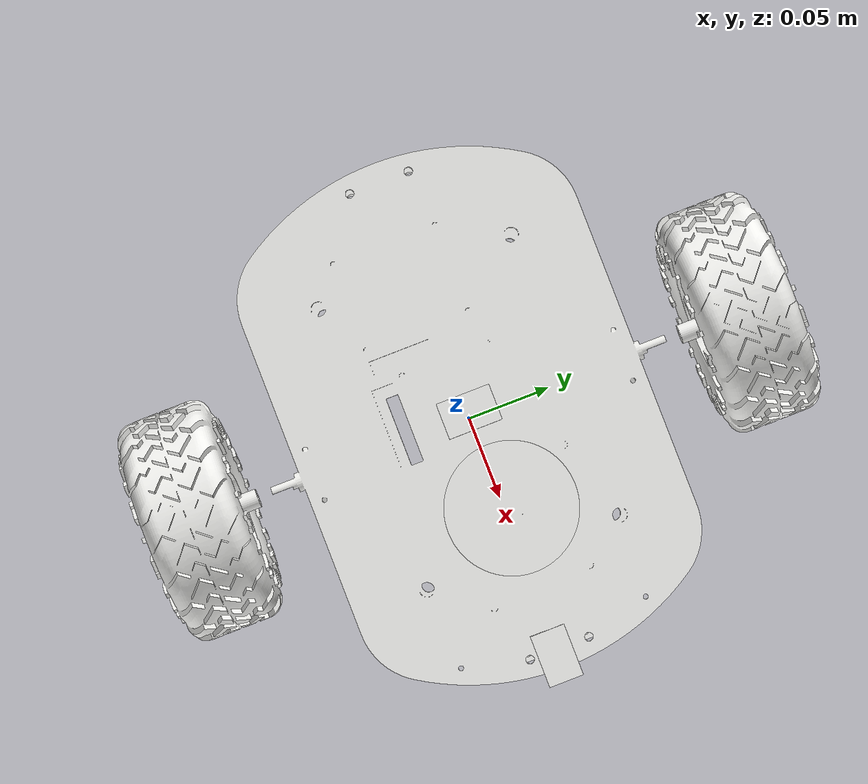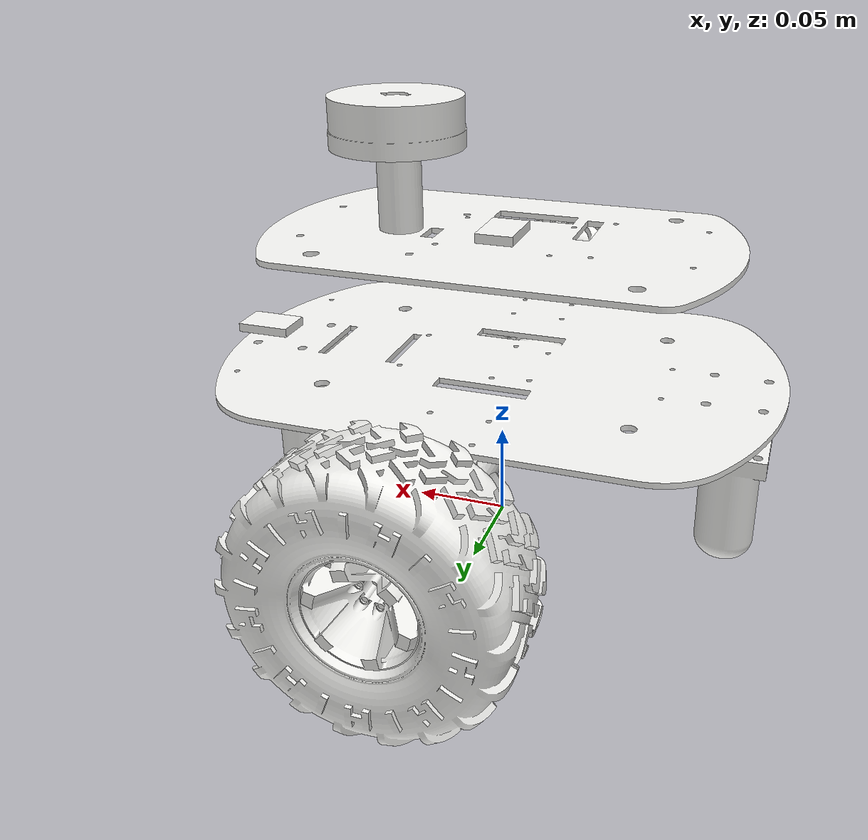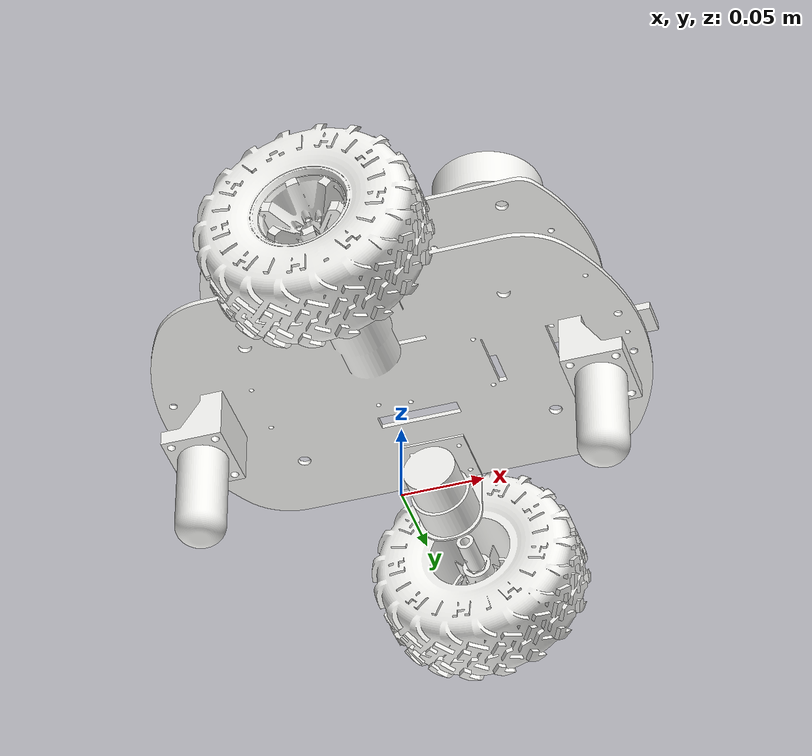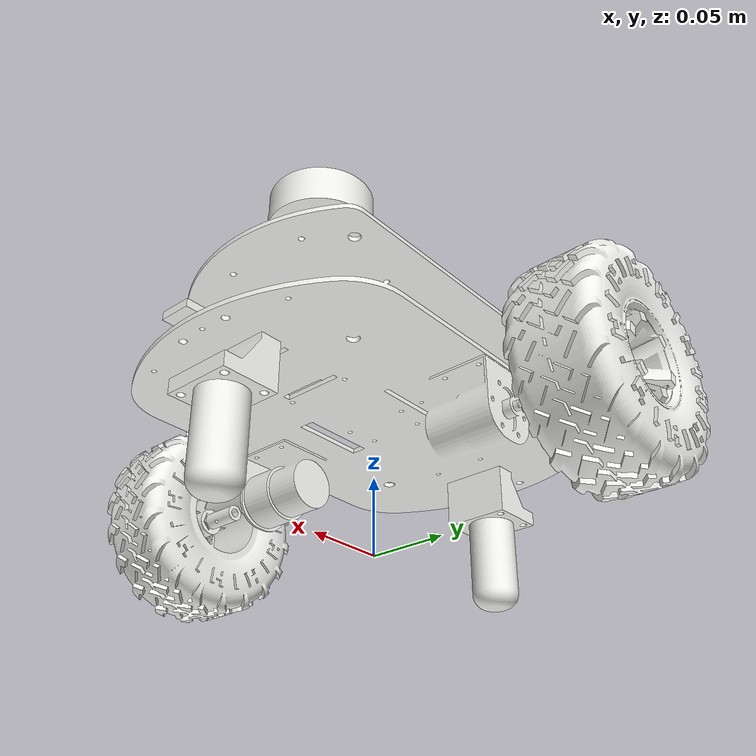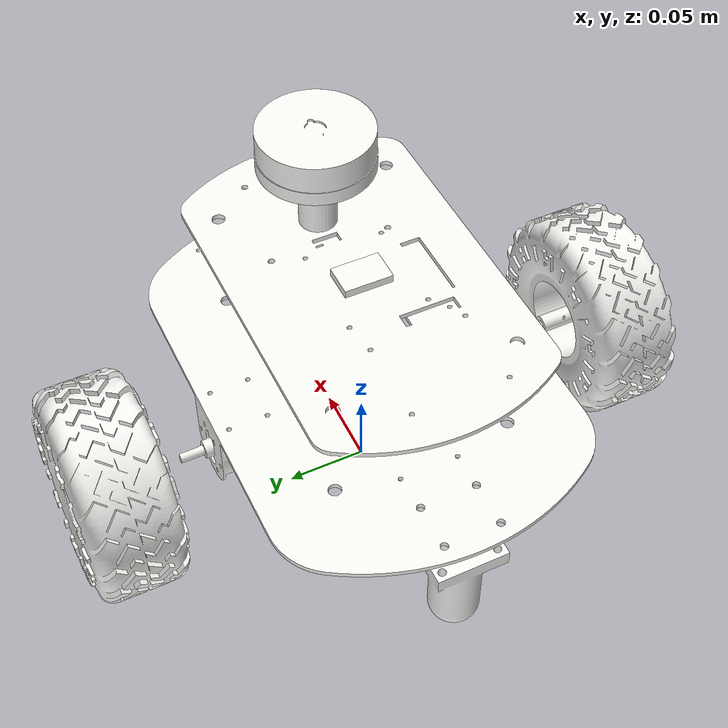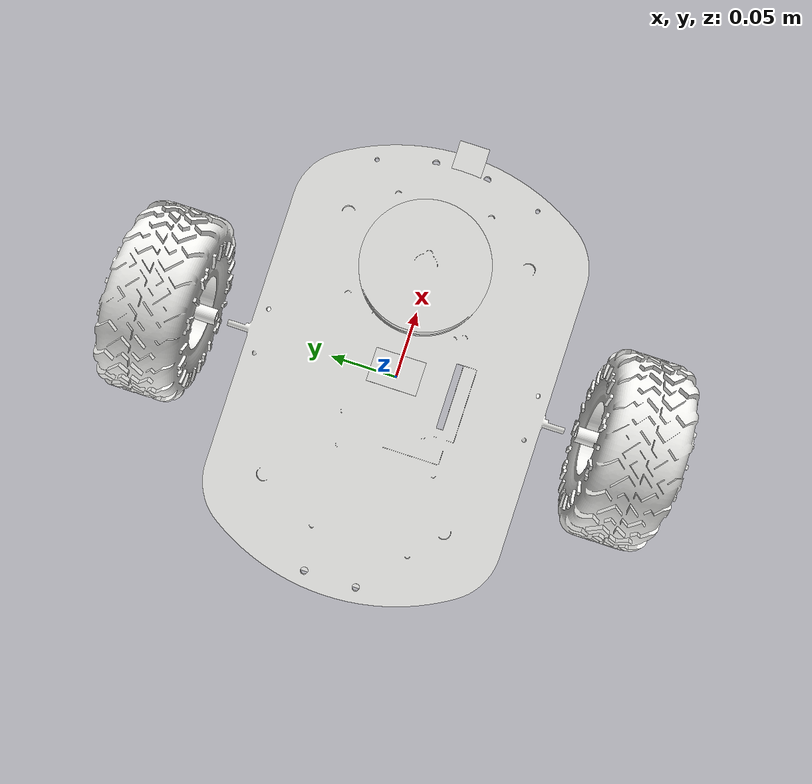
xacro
<?xml version="1.0"?>
<robot xmlns:xacro="http://www.ros.org/wiki/xacro" name="burgerbot">

  <!-- Base geometry: links, joints, visuals, inertials -->
  <xacro:include filename="$(find burgerbot)/urdf/burgerbot.urdf.xacro"/>

  <gazebo>
    <plugin name="gz::sim::systems::JointStatePublisher"
            filename="gz-sim-joint-state-publisher-system"/>
  </gazebo>

  <gazebo>
    <plugin name="gz::sim::systems::DiffDrive"
            filename="gz-sim-diff-drive-system">
      <left_joint>left_wheel_joint</left_joint>
      <right_joint>right_wheel_joint</right_joint>
      <wheel_separation>0.282</wheel_separation>
      <wheel_radius>0.0625</wheel_radius>
      <odom_publish_frequency>50</odom_publish_frequency>
      <topic>/cmd_vel</topic>
      <odom_topic>/wheel_odom</odom_topic>
      <frame_id>odom</frame_id>
      <child_frame_id>base_footprint</child_frame_id>
      <publish_odom>true</publish_odom>
      <publish_odom_tf>false</publish_odom_tf>
    </plugin>
  </gazebo>

  <gazebo reference="lidar">
    <sensor name="gpu_lidar" type="gpu_lidar">
      <always_on>1</always_on>
      <update_rate>10</update_rate>
      <topic>scan</topic>
      <gz_frame_id>lidar</gz_frame_id>
      <visualize>true</visualize>
      <lidar>
        <scan>
          <horizontal>
            <samples>360</samples>
            <resolution>1</resolution>
            <min_angle>-3.14159265</min_angle>
            <max_angle>3.14159265</max_angle>
          </horizontal>
        </scan>
        <range>
          <min>0.12</min>
          <max>3.5</max>
          <resolution>0.015</resolution>
        </range>
        <noise>
          <type>gaussian</type>
          <mean>0.0</mean>
          <stddev>0.01</stddev>
        </noise>
      </lidar>
    </sensor>
  </gazebo>

  <gazebo reference="imu_link">
    <sensor name="imu_sensor" type="imu">
      <always_on>1</always_on>
      <update_rate>50</update_rate>
      <topic>imu/raw</topic>
      <gz_frame_id>imu_link</gz_frame_id>
      <imu>
        <angular_velocity>
          <x><noise type="gaussian"><mean>0.0</mean><stddev>2e-4</stddev><bias_mean>7.5e-6</bias_mean><bias_stddev>8e-7</bias_stddev></noise></x>
          <y><noise type="gaussian"><mean>0.0</mean><stddev>2e-4</stddev><bias_mean>7.5e-6</bias_mean><bias_stddev>8e-7</bias_stddev></noise></y>
          <z><noise type="gaussian"><mean>0.0</mean><stddev>2e-4</stddev><bias_mean>7.5e-6</bias_mean><bias_stddev>8e-7</bias_stddev></noise></z>
        </angular_velocity>
        <linear_acceleration>
          <x><noise type="gaussian"><mean>0.0</mean><stddev>1.7e-2</stddev><bias_mean>0.1</bias_mean><bias_stddev>0.001</bias_stddev></noise></x>
          <y><noise type="gaussian"><mean>0.0</mean><stddev>1.7e-2</stddev><bias_mean>0.1</bias_mean><bias_stddev>0.001</bias_stddev></noise></y>
          <z><noise type="gaussian"><mean>0.0</mean><stddev>1.7e-2</stddev><bias_mean>0.1</bias_mean><bias_stddev>0.001</bias_stddev></noise></z>
        </linear_acceleration>
      </imu>
    </sensor>
  </gazebo>

</robot>

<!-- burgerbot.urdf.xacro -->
<robot xmlns:xacro="http://www.ros.org/wiki/xacro" name="burgerbot">

  <!-- ── Geometry (firmware authoritative) ── -->
  <xacro:property name="wheel_radius"  value="0.0625"/>
  <xacro:property name="wheel_sep"     value="0.282"/>
  <xacro:property name="wheel_width"   value="0.026"/>
  <!-- wheel axle height in base_link frame, from CAD (left/right_wheel_joint z) -->
  <xacro:property name="wheel_z"       value="-0.027"/>
  <!-- ground plane sits wheel_radius below the axle -->
  <xacro:property name="ground_z"      value="${wheel_z - wheel_radius}"/>
  <xacro:property name="caster_radius" value="0.0175"/>

  <!-- mesh path helper -->
  <xacro:property name="mesh" value="package://burgerbot/meshes/rep"/>

  <!-- ── Materials (fallback; .dae meshes carry their own colours) ── -->
  <material name="Acier"><color rgba="0.965 0.965 0.953 1.0"/></material>

  <!-- ── base_footprint: ground-plane reference ──
       base_link sits |ground_z| above the contact plane -->
  <link name="base_footprint"/>
  <joint name="base_footprint_joint" type="fixed">
    <parent link="base_footprint"/>
    <child  link="base_link"/>
    <origin xyz="0 0 ${-ground_z}" rpy="0 0 0"/>
  </joint>

  <!-- ── base_link ── -->
  <link name="base_link">
    <inertial>
      <origin xyz="0.002457 0.000319 0.017256" rpy="0 0 0"/>
      <mass value="2.915698"/>
      <inertia ixx="1.497968e-02" ixy="-1.987847e-06" ixz="-6.198532e-04"
               iyy="1.704262e-02" iyz="-5.692531e-05" izz="2.223752e-02"/>
    </inertial>
    <visual>
      <origin xyz="0 0 0" rpy="0 0 0"/>
      <geometry><mesh filename="${mesh}/base_link.dae" scale="1 1 1"/></geometry>
      <material name="Acier"/>
    </visual>
    <collision>
      <!-- chassis approximated by a cylinder spanning the body -->
      <origin xyz="0 0 0.017" rpy="0 0 0"/>
      <geometry><cylinder radius="0.0825" length="0.090"/></geometry>
    </collision>
  </link>

  <!-- ── Left wheel ── -->
  <joint name="left_wheel_joint" type="continuous">
    <parent link="base_link"/>
    <child  link="left_wheel"/>
    <origin xyz="0 ${wheel_sep/2} ${wheel_z}" rpy="0 0 0"/>
    <axis xyz="0 1 0"/>
    <limit effort="100.0" velocity="20.0"/>
  </joint>
  <link name="left_wheel">
    <inertial>
      <origin xyz="0.000005 0.022147 0.000002" rpy="0 0 0"/>
      <mass value="1.021548"/>
      <inertia ixx="1.666424e-03" ixy="1.189099e-08" ixz="4.089806e-08"
               iyy="2.596221e-03" iyz="-7.180651e-08" izz="1.666591e-03"/>
    </inertial>
    <visual>
      <origin xyz="-0.000411 0.019078 -0.001942" rpy="0 0 0"/>
      <geometry><mesh filename="${mesh}/left_wheel.dae" scale="1 1 1"/></geometry>
      <material name="Acier"/>
    </visual>
    <collision>
      <!-- cylinder axis along the joint Y axis -->
      <origin xyz="0 0 0" rpy="${pi/2} 0 0"/>
      <geometry><cylinder radius="${wheel_radius}" length="${wheel_width}"/></geometry>
    </collision>
  </link>

  <!-- ── Right wheel ── -->
  <joint name="right_wheel_joint" type="continuous">
    <parent link="base_link"/>
    <child  link="right_wheel"/>
    <origin xyz="0 ${-wheel_sep/2} ${wheel_z}" rpy="0 0 0"/>
    <axis xyz="0 1 0"/>
    <limit effort="100.0" velocity="20.0"/>
  </joint>
  <link name="right_wheel">
    <inertial>
      <origin xyz="-0.000005 -0.022147 0.000002" rpy="0 0 0"/>
      <mass value="1.021548"/>
      <inertia ixx="1.666424e-03" ixy="1.189099e-08" ixz="-4.089806e-08"
               iyy="2.596221e-03" iyz="7.180651e-08" izz="1.666591e-03"/>
    </inertial>
    <visual>
      <origin xyz="0.000411 -0.019078 -0.001942" rpy="0 0 0"/>
      <geometry><mesh filename="${mesh}/right_wheel.dae" scale="1 1 1"/></geometry>
      <material name="Acier"/>
    </visual>
    <collision>
      <origin xyz="0 0 0" rpy="${pi/2} 0 0"/>
      <geometry><cylinder radius="${wheel_radius}" length="${wheel_width}"/></geometry>
    </collision>
  </link>

  <!-- ── Front caster (CAD position; collision sphere drops to ground) ── -->
  <joint name="caster_wheel1_joint" type="fixed">
    <parent link="base_link"/>
    <child  link="caster_wheel1"/>
    <origin xyz="0.122500 0 -0.023000" rpy="0 0 0"/>
  </joint>
  <link name="caster_wheel1">
    <inertial>
      <origin xyz="-0.002156 0 -0.019873" rpy="0 0 0"/>
      <mass value="0.605039"/>
      <inertia ixx="4.333806e-04" ixy="0" ixz="4.094011e-05"
               iyy="4.187976e-04" iyz="0" izz="1.115116e-04"/>
    </inertial>
    <visual>
      <origin xyz="0 0 0" rpy="0 0 0"/>
      <geometry><mesh filename="${mesh}/caster_wheel1.dae" scale="1 1 1"/></geometry>
      <material name="Acier"/>
    </visual>
    <collision>
      <origin xyz="0 0 ${ground_z - (-0.023000) + caster_radius}" rpy="0 0 0"/>
      <geometry><sphere radius="${caster_radius}"/></geometry>
    </collision>
  </link>

  <!-- ── Rear caster ── -->
  <joint name="caster_wheel2_joint" type="fixed">
    <parent link="base_link"/>
    <child  link="caster_wheel2"/>
    <origin xyz="-0.125000 0 -0.035500" rpy="0 0 0"/>
  </joint>
  <link name="caster_wheel2">
    <inertial>
      <origin xyz="0.002156 0 -0.007373" rpy="0 0 0"/>
      <mass value="0.605039"/>
      <inertia ixx="4.333806e-04" ixy="0" ixz="-4.094010e-05"
               iyy="4.187976e-04" iyz="0" izz="1.115116e-04"/>
    </inertial>
    <visual>
      <origin xyz="0 0 0" rpy="0 0 0"/>
      <geometry><mesh filename="${mesh}/caster_wheel2.dae" scale="1 1 1"/></geometry>
      <material name="Acier"/>
    </visual>
    <collision>
      <origin xyz="0 0 ${ground_z - (-0.035500) + caster_radius}" rpy="0 0 0"/>
      <geometry><sphere radius="${caster_radius}"/></geometry>
    </collision>
  </link>

  <!-- ── LiDAR (link name 'lidar' matches lds02rr_driver + sim sensor) ── -->
  <joint name="lidar_joint" type="fixed">
    <parent link="base_link"/>
    <child  link="lidar"/>
    <origin xyz="0.055000 0.002000 0.123200" rpy="0 0 3.14159"/>
  </joint>
  <link name="lidar">
    <inertial>
      <origin xyz="0 0 0.005494" rpy="0 0 0"/>
      <mass value="0.756885"/>
      <inertia ixx="2.679588e-04" ixy="0" ixz="0"
               iyy="2.679523e-04" iyz="0" izz="4.518700e-04"/>
    </inertial>
    <visual>
      <origin xyz="0 0 0" rpy="0 0 0"/>
      <geometry><mesh filename="${mesh}/lidar.dae" scale="1 1 1"/></geometry>
      <material name="Acier"/>
    </visual>
    <collision>
      <origin xyz="0 0 0.0055" rpy="0 0 0"/>
      <geometry><cylinder radius="0.0508" length="0.055"/></geometry>
    </collision>
  </link>

  <!-- ── IMU (link name 'imu_link' matches sim sensor reference) ── -->
  <joint name="imu_joint" type="fixed">
    <parent link="base_link"/>
    <child  link="imu_link"/>
    <origin xyz="0 0 0.075500" rpy="0 0 0"/>
  </joint>
  <link name="imu_link">
    <inertial>
      <origin xyz="0 0 0" rpy="0 0 0"/>
      <mass value="0.023550"/>
      <inertia ixx="1.815312e-06" ixy="0" ixz="0"
               iyy="1.000000e-06" iyz="0" izz="2.551250e-06"/>
    </inertial>
    <visual>
      <origin xyz="0 0 0" rpy="0 0 0"/>
      <geometry><mesh filename="${mesh}/imu.dae" scale="1 1 1"/></geometry>
      <material name="Acier"/>
    </visual>
  </link>

  <!-- ── Magnetometer (compass; firmware publishes /mag) ── -->
  <joint name="mag_joint" type="fixed">
    <parent link="base_link"/>
    <child  link="mag"/>
    <origin xyz="0.142000 -0.003000 0.005500" rpy="0 0 0"/>
  </joint>
  <link name="mag">
    <inertial>
      <origin xyz="0 0 0" rpy="0 0 0"/>
      <mass value="0.023550"/>
      <inertia ixx="1.000000e-06" ixy="0" ixz="0"
               iyy="1.815312e-06" iyz="0" izz="2.551250e-06"/>
    </inertial>
    <visual>
      <origin xyz="0 0 0" rpy="0 0 0"/>
      <geometry><mesh filename="${mesh}/mag.dae" scale="1 1 1"/></geometry>
      <material name="Acier"/>
    </visual>
  </link>

</robot>
